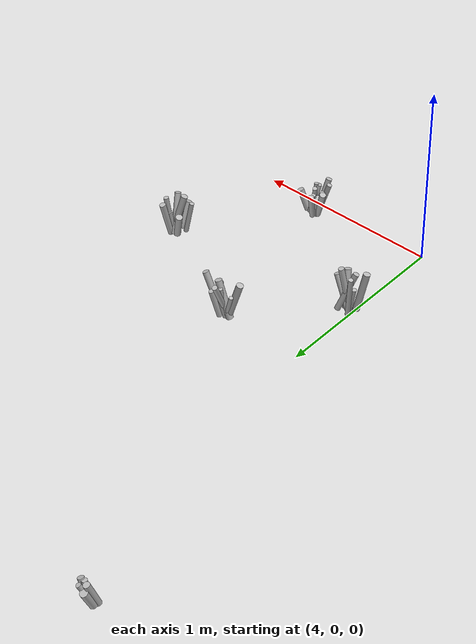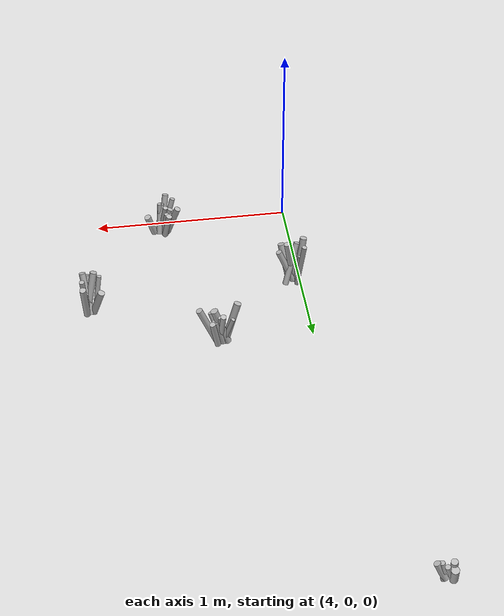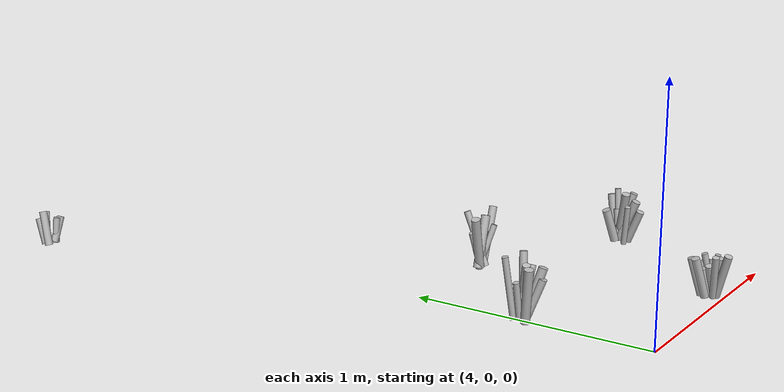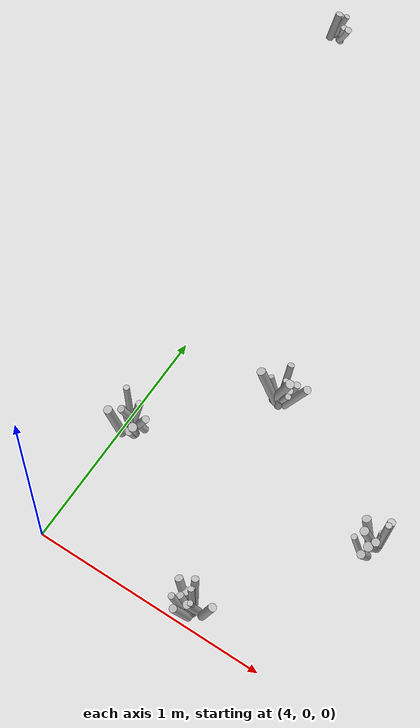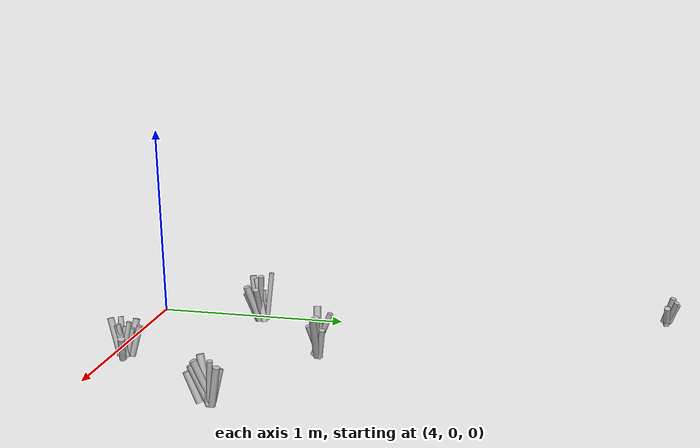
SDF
<sdf version="1.6">
 <world name="default">
  <model name="tussocks">
   <static>true</static>
   <link name="tuft61_0">
    <pose>4.4151 0.9806 0.1096 0 0.2921 3.3738</pose>
    <visual name="tuft61_0_v">
     <geometry><cylinder><radius>0.0185</radius><length>0.2382</length></cylinder></geometry>
     <material>
      <script>
       <uri>model://bushfire/materials/scripts</uri>
       <uri>model://bushfire/materials/textures</uri>
       <name>Bushfire/Foliage2</name>
      </script>
     </material>
    </visual>
   </link>
   <link name="tuft61_1">
    <pose>4.4665 1.0176 0.1105 0 0.3881 1.6053</pose>
    <visual name="tuft61_1_v">
     <geometry><cylinder><radius>0.0141</radius><length>0.2403</length></cylinder></geometry>
     <material>
      <script>
       <uri>model://bushfire/materials/scripts</uri>
       <uri>model://bushfire/materials/textures</uri>
       <name>Bushfire/Tussock</name>
      </script>
     </material>
    </visual>
   </link>
   <link name="tuft61_2">
    <pose>4.4705 1.0020 0.0847 0 0.1331 1.2340</pose>
    <visual name="tuft61_2_v">
     <geometry><cylinder><radius>0.0120</radius><length>0.1840</length></cylinder></geometry>
     <material>
      <script>
       <uri>model://bushfire/materials/scripts</uri>
       <uri>model://bushfire/materials/textures</uri>
       <name>Bushfire/Tussock</name>
      </script>
     </material>
    </visual>
   </link>
   <link name="tuft61_3">
    <pose>4.4894 0.9790 0.0834 0 0.3740 5.7212</pose>
    <visual name="tuft61_3_v">
     <geometry><cylinder><radius>0.0123</radius><length>0.1814</length></cylinder></geometry>
     <material>
      <script>
       <uri>model://bushfire/materials/scripts</uri>
       <uri>model://bushfire/materials/textures</uri>
       <name>Bushfire/Tussock</name>
      </script>
     </material>
    </visual>
   </link>
   <link name="tuft61_4">
    <pose>4.4333 1.0014 0.0744 0 0.3127 2.8972</pose>
    <visual name="tuft61_4_v">
     <geometry><cylinder><radius>0.0111</radius><length>0.1618</length></cylinder></geometry>
     <material>
      <script>
       <uri>model://bushfire/materials/scripts</uri>
       <uri>model://bushfire/materials/textures</uri>
       <name>Bushfire/Tussock</name>
      </script>
     </material>
    </visual>
   </link>
   <link name="tuft61_5">
    <pose>4.5317 0.9990 0.1124 0 0.3908 0.0947</pose>
    <visual name="tuft61_5_v">
     <geometry><cylinder><radius>0.0167</radius><length>0.2444</length></cylinder></geometry>
     <material>
      <script>
       <uri>model://bushfire/materials/scripts</uri>
       <uri>model://bushfire/materials/textures</uri>
       <name>Bushfire/Foliage2</name>
      </script>
     </material>
    </visual>
   </link>
   <link name="tuft61_6">
    <pose>4.4775 0.9956 0.0676 0 0.2795 0.2603</pose>
    <visual name="tuft61_6_v">
     <geometry><cylinder><radius>0.0194</radius><length>0.1470</length></cylinder></geometry>
     <material>
      <script>
       <uri>model://bushfire/materials/scripts</uri>
       <uri>model://bushfire/materials/textures</uri>
       <name>Bushfire/Tussock</name>
      </script>
     </material>
    </visual>
   </link>
   <link name="tuft61_7">
    <pose>4.4685 0.9930 0.1018 0 0.3137 0.0616</pose>
    <visual name="tuft61_7_v">
     <geometry><cylinder><radius>0.0186</radius><length>0.2214</length></cylinder></geometry>
     <material>
      <script>
       <uri>model://bushfire/materials/scripts</uri>
       <uri>model://bushfire/materials/textures</uri>
       <name>Bushfire/Tussock</name>
      </script>
     </material>
    </visual>
   </link>
   <link name="tuft61_8">
    <pose>4.5009 1.0201 0.0737 0 0.2405 0.6806</pose>
    <visual name="tuft61_8_v">
     <geometry><cylinder><radius>0.0152</radius><length>0.1602</length></cylinder></geometry>
     <material>
      <script>
       <uri>model://bushfire/materials/scripts</uri>
       <uri>model://bushfire/materials/textures</uri>
       <name>Bushfire/Tussock</name>
      </script>
     </material>
    </visual>
   </link>
   <link name="tuft96_0">
    <pose>4.0501 0.5662 0.1218 0 0.1888 0.5560</pose>
    <visual name="tuft96_0_v">
     <geometry><cylinder><radius>0.0153</radius><length>0.2648</length></cylinder></geometry>
     <material>
      <script>
       <uri>model://bushfire/materials/scripts</uri>
       <uri>model://bushfire/materials/textures</uri>
       <name>Bushfire/Foliage2</name>
      </script>
     </material>
    </visual>
   </link>
   <link name="tuft96_1">
    <pose>4.0106 0.5660 0.0719 0 0.1819 3.0913</pose>
    <visual name="tuft96_1_v">
     <geometry><cylinder><radius>0.0126</radius><length>0.1563</length></cylinder></geometry>
     <material>
      <script>
       <uri>model://bushfire/materials/scripts</uri>
       <uri>model://bushfire/materials/textures</uri>
       <name>Bushfire/Foliage2</name>
      </script>
     </material>
    </visual>
   </link>
   <link name="tuft96_2">
    <pose>4.0708 0.5291 0.0955 0 0.3170 5.3133</pose>
    <visual name="tuft96_2_v">
     <geometry><cylinder><radius>0.0182</radius><length>0.2076</length></cylinder></geometry>
     <material>
      <script>
       <uri>model://bushfire/materials/scripts</uri>
       <uri>model://bushfire/materials/textures</uri>
       <name>Bushfire/Foliage2</name>
      </script>
     </material>
    </visual>
   </link>
   <link name="tuft96_3">
    <pose>4.0013 0.5989 0.1187 0 0.1540 2.4898</pose>
    <visual name="tuft96_3_v">
     <geometry><cylinder><radius>0.0127</radius><length>0.2581</length></cylinder></geometry>
     <material>
      <script>
       <uri>model://bushfire/materials/scripts</uri>
       <uri>model://bushfire/materials/textures</uri>
       <name>Bushfire/Tussock</name>
      </script>
     </material>
    </visual>
   </link>
   <link name="tuft96_4">
    <pose>4.0453 0.5628 0.1089 0 0.3776 3.8705</pose>
    <visual name="tuft96_4_v">
     <geometry><cylinder><radius>0.0156</radius><length>0.2368</length></cylinder></geometry>
     <material>
      <script>
       <uri>model://bushfire/materials/scripts</uri>
       <uri>model://bushfire/materials/textures</uri>
       <name>Bushfire/Foliage2</name>
      </script>
     </material>
    </visual>
   </link>
   <link name="tuft96_5">
    <pose>4.0717 0.5628 0.0942 0 0.3844 6.2304</pose>
    <visual name="tuft96_5_v">
     <geometry><cylinder><radius>0.0155</radius><length>0.2048</length></cylinder></geometry>
     <material>
      <script>
       <uri>model://bushfire/materials/scripts</uri>
       <uri>model://bushfire/materials/textures</uri>
       <name>Bushfire/Foliage2</name>
      </script>
     </material>
    </visual>
   </link>
   <link name="tuft96_6">
    <pose>3.9899 0.5160 0.1066 0 0.1986 3.8435</pose>
    <visual name="tuft96_6_v">
     <geometry><cylinder><radius>0.0181</radius><length>0.2316</length></cylinder></geometry>
     <material>
      <script>
       <uri>model://bushfire/materials/scripts</uri>
       <uri>model://bushfire/materials/textures</uri>
       <name>Bushfire/Foliage2</name>
      </script>
     </material>
    </visual>
   </link>
   <link name="tuft96_7">
    <pose>4.0638 0.5216 0.0760 0 0.3597 5.0920</pose>
    <visual name="tuft96_7_v">
     <geometry><cylinder><radius>0.0161</radius><length>0.1652</length></cylinder></geometry>
     <material>
      <script>
       <uri>model://bushfire/materials/scripts</uri>
       <uri>model://bushfire/materials/textures</uri>
       <name>Bushfire/Tussock</name>
      </script>
     </material>
    </visual>
   </link>
   <link name="tuft105_1">
    <pose>3.6603 2.7120 0.0681 0 0.3102 1.1904</pose>
    <visual name="tuft105_1_v">
     <geometry><cylinder><radius>0.0167</radius><length>0.1479</length></cylinder></geometry>
     <material>
      <script>
       <uri>model://bushfire/materials/scripts</uri>
       <uri>model://bushfire/materials/textures</uri>
       <name>Bushfire/Foliage2</name>
      </script>
     </material>
    </visual>
   </link>
   <link name="tuft105_2">
    <pose>3.7167 2.7016 0.0521 0 0.3879 6.2484</pose>
    <visual name="tuft105_2_v">
     <geometry><cylinder><radius>0.0161</radius><length>0.1132</length></cylinder></geometry>
     <material>
      <script>
       <uri>model://bushfire/materials/scripts</uri>
       <uri>model://bushfire/materials/textures</uri>
       <name>Bushfire/Foliage2</name>
      </script>
     </material>
    </visual>
   </link>
   <link name="tuft105_3">
    <pose>3.7090 2.7017 0.0505 0 0.1284 6.2457</pose>
    <visual name="tuft105_3_v">
     <geometry><cylinder><radius>0.0145</radius><length>0.1098</length></cylinder></geometry>
     <material>
      <script>
       <uri>model://bushfire/materials/scripts</uri>
       <uri>model://bushfire/materials/textures</uri>
       <name>Bushfire/Tussock</name>
      </script>
     </material>
    </visual>
   </link>
   <link name="tuft105_6">
    <pose>3.6818 2.7289 0.0636 0 0.4115 0.7934</pose>
    <visual name="tuft105_6_v">
     <geometry><cylinder><radius>0.0129</radius><length>0.1382</length></cylinder></geometry>
     <material>
      <script>
       <uri>model://bushfire/materials/scripts</uri>
       <uri>model://bushfire/materials/textures</uri>
       <name>Bushfire/Tussock</name>
      </script>
     </material>
    </visual>
   </link>
   <link name="tuft105_8">
    <pose>3.6631 2.7329 0.0522 0 0.3664 1.3627</pose>
    <visual name="tuft105_8_v">
     <geometry><cylinder><radius>0.0196</radius><length>0.1135</length></cylinder></geometry>
     <material>
      <script>
       <uri>model://bushfire/materials/scripts</uri>
       <uri>model://bushfire/materials/textures</uri>
       <name>Bushfire/Tussock</name>
      </script>
     </material>
    </visual>
   </link>
   <link name="tuft141_0">
    <pose>4.6321 0.0795 0.0562 0 0.1869 2.5877</pose>
    <visual name="tuft141_0_v">
     <geometry><cylinder><radius>0.0187</radius><length>0.1221</length></cylinder></geometry>
     <material>
      <script>
       <uri>model://bushfire/materials/scripts</uri>
       <uri>model://bushfire/materials/textures</uri>
       <name>Bushfire/Foliage2</name>
      </script>
     </material>
    </visual>
   </link>
   <link name="tuft141_1">
    <pose>4.6475 0.0113 0.0888 0 0.3189 4.2196</pose>
    <visual name="tuft141_1_v">
     <geometry><cylinder><radius>0.0161</radius><length>0.1931</length></cylinder></geometry>
     <material>
      <script>
       <uri>model://bushfire/materials/scripts</uri>
       <uri>model://bushfire/materials/textures</uri>
       <name>Bushfire/Foliage2</name>
      </script>
     </material>
    </visual>
   </link>
   <link name="tuft141_2">
    <pose>4.6086 0.0854 0.0820 0 0.3433 2.6937</pose>
    <visual name="tuft141_2_v">
     <geometry><cylinder><radius>0.0166</radius><length>0.1782</length></cylinder></geometry>
     <material>
      <script>
       <uri>model://bushfire/materials/scripts</uri>
       <uri>model://bushfire/materials/textures</uri>
       <name>Bushfire/Foliage2</name>
      </script>
     </material>
    </visual>
   </link>
   <link name="tuft141_3">
    <pose>4.6713 0.0531 0.0798 0 0.1381 4.7521</pose>
    <visual name="tuft141_3_v">
     <geometry><cylinder><radius>0.0118</radius><length>0.1735</length></cylinder></geometry>
     <material>
      <script>
       <uri>model://bushfire/materials/scripts</uri>
       <uri>model://bushfire/materials/textures</uri>
       <name>Bushfire/Foliage2</name>
      </script>
     </material>
    </visual>
   </link>
   <link name="tuft141_5">
    <pose>4.6403 0.1154 0.0728 0 0.2866 2.0464</pose>
    <visual name="tuft141_5_v">
     <geometry><cylinder><radius>0.0153</radius><length>0.1582</length></cylinder></geometry>
     <material>
      <script>
       <uri>model://bushfire/materials/scripts</uri>
       <uri>model://bushfire/materials/textures</uri>
       <name>Bushfire/Tussock</name>
      </script>
     </material>
    </visual>
   </link>
   <link name="tuft141_6">
    <pose>4.6710 0.0548 0.0770 0 0.2916 4.3720</pose>
    <visual name="tuft141_6_v">
     <geometry><cylinder><radius>0.0168</radius><length>0.1674</length></cylinder></geometry>
     <material>
      <script>
       <uri>model://bushfire/materials/scripts</uri>
       <uri>model://bushfire/materials/textures</uri>
       <name>Bushfire/Foliage2</name>
      </script>
     </material>
    </visual>
   </link>
   <link name="tuft141_7">
    <pose>4.7217 0.0781 0.0583 0 0.3330 0.4227</pose>
    <visual name="tuft141_7_v">
     <geometry><cylinder><radius>0.0171</radius><length>0.1267</length></cylinder></geometry>
     <material>
      <script>
       <uri>model://bushfire/materials/scripts</uri>
       <uri>model://bushfire/materials/textures</uri>
       <name>Bushfire/Tussock</name>
      </script>
     </material>
    </visual>
   </link>
   <link name="tuft141_8">
    <pose>4.6408 0.0547 0.0663 0 0.3454 3.1650</pose>
    <visual name="tuft141_8_v">
     <geometry><cylinder><radius>0.0154</radius><length>0.1440</length></cylinder></geometry>
     <material>
      <script>
       <uri>model://bushfire/materials/scripts</uri>
       <uri>model://bushfire/materials/textures</uri>
       <name>Bushfire/Tussock</name>
      </script>
     </material>
    </visual>
   </link>
   <link name="tuft141_9">
    <pose>4.6491 0.0881 0.0670 0 0.2144 2.1635</pose>
    <visual name="tuft141_9_v">
     <geometry><cylinder><radius>0.0116</radius><length>0.1457</length></cylinder></geometry>
     <material>
      <script>
       <uri>model://bushfire/materials/scripts</uri>
       <uri>model://bushfire/materials/textures</uri>
       <name>Bushfire/Foliage2</name>
      </script>
     </material>
    </visual>
   </link>
   <link name="tuft141_10">
    <pose>4.6574 0.0717 0.0830 0 0.2245 2.2740</pose>
    <visual name="tuft141_10_v">
     <geometry><cylinder><radius>0.0126</radius><length>0.1804</length></cylinder></geometry>
     <material>
      <script>
       <uri>model://bushfire/materials/scripts</uri>
       <uri>model://bushfire/materials/textures</uri>
       <name>Bushfire/Tussock</name>
      </script>
     </material>
    </visual>
   </link>
   <link name="tuft141_11">
    <pose>4.6244 0.0339 0.0873 0 0.2897 3.5713</pose>
    <visual name="tuft141_11_v">
     <geometry><cylinder><radius>0.0136</radius><length>0.1899</length></cylinder></geometry>
     <material>
      <script>
       <uri>model://bushfire/materials/scripts</uri>
       <uri>model://bushfire/materials/textures</uri>
       <name>Bushfire/Tussock</name>
      </script>
     </material>
    </visual>
   </link>
   <link name="tuft150_0">
    <pose>5.1115 0.6482 0.1036 0 0.3543 5.1366</pose>
    <visual name="tuft150_0_v">
     <geometry><cylinder><radius>0.0165</radius><length>0.2252</length></cylinder></geometry>
     <material>
      <script>
       <uri>model://bushfire/materials/scripts</uri>
       <uri>model://bushfire/materials/textures</uri>
       <name>Bushfire/Tussock</name>
      </script>
     </material>
    </visual>
   </link>
   <link name="tuft150_1">
    <pose>5.0929 0.6493 0.1069 0 0.2933 3.9733</pose>
    <visual name="tuft150_1_v">
     <geometry><cylinder><radius>0.0180</radius><length>0.2323</length></cylinder></geometry>
     <material>
      <script>
       <uri>model://bushfire/materials/scripts</uri>
       <uri>model://bushfire/materials/textures</uri>
       <name>Bushfire/Tussock</name>
      </script>
     </material>
    </visual>
   </link>
   <link name="tuft150_2">
    <pose>5.1246 0.6831 0.1046 0 0.1350 0.8071</pose>
    <visual name="tuft150_2_v">
     <geometry><cylinder><radius>0.0132</radius><length>0.2273</length></cylinder></geometry>
     <material>
      <script>
       <uri>model://bushfire/materials/scripts</uri>
       <uri>model://bushfire/materials/textures</uri>
       <name>Bushfire/Foliage2</name>
      </script>
     </material>
    </visual>
   </link>
   <link name="tuft150_3">
    <pose>5.1051 0.6319 0.0892 0 0.3663 4.7180</pose>
    <visual name="tuft150_3_v">
     <geometry><cylinder><radius>0.0122</radius><length>0.1940</length></cylinder></geometry>
     <material>
      <script>
       <uri>model://bushfire/materials/scripts</uri>
       <uri>model://bushfire/materials/textures</uri>
       <name>Bushfire/Tussock</name>
      </script>
     </material>
    </visual>
   </link>
   <link name="tuft150_4">
    <pose>5.0549 0.6133 0.0825 0 0.1929 3.9191</pose>
    <visual name="tuft150_4_v">
     <geometry><cylinder><radius>0.0124</radius><length>0.1794</length></cylinder></geometry>
     <material>
      <script>
       <uri>model://bushfire/materials/scripts</uri>
       <uri>model://bushfire/materials/textures</uri>
       <name>Bushfire/Foliage2</name>
      </script>
     </material>
    </visual>
   </link>
   <link name="tuft150_5">
    <pose>5.0614 0.6883 0.0700 0 0.3294 2.6080</pose>
    <visual name="tuft150_5_v">
     <geometry><cylinder><radius>0.0182</radius><length>0.1521</length></cylinder></geometry>
     <material>
      <script>
       <uri>model://bushfire/materials/scripts</uri>
       <uri>model://bushfire/materials/textures</uri>
       <name>Bushfire/Tussock</name>
      </script>
     </material>
    </visual>
   </link>
   <link name="tuft150_6">
    <pose>5.1250 0.7043 0.0914 0 0.2101 1.1226</pose>
    <visual name="tuft150_6_v">
     <geometry><cylinder><radius>0.0167</radius><length>0.1987</length></cylinder></geometry>
     <material>
      <script>
       <uri>model://bushfire/materials/scripts</uri>
       <uri>model://bushfire/materials/textures</uri>
       <name>Bushfire/Foliage2</name>
      </script>
     </material>
    </visual>
   </link>
   <link name="tuft150_7">
    <pose>5.1169 0.6805 0.0619 0 0.1290 0.9825</pose>
    <visual name="tuft150_7_v">
     <geometry><cylinder><radius>0.0150</radius><length>0.1346</length></cylinder></geometry>
     <material>
      <script>
       <uri>model://bushfire/materials/scripts</uri>
       <uri>model://bushfire/materials/textures</uri>
       <name>Bushfire/Tussock</name>
      </script>
     </material>
    </visual>
   </link>
   <link name="tuft150_8">
    <pose>5.1070 0.6314 0.0897 0 0.4059 4.7781</pose>
    <visual name="tuft150_8_v">
     <geometry><cylinder><radius>0.0191</radius><length>0.1950</length></cylinder></geometry>
     <material>
      <script>
       <uri>model://bushfire/materials/scripts</uri>
       <uri>model://bushfire/materials/textures</uri>
       <name>Bushfire/Foliage2</name>
      </script>
     </material>
    </visual>
   </link>
   <link name="tuft150_9">
    <pose>5.0995 0.5948 0.0698 0 0.3858 4.6316</pose>
    <visual name="tuft150_9_v">
     <geometry><cylinder><radius>0.0170</radius><length>0.1518</length></cylinder></geometry>
     <material>
      <script>
       <uri>model://bushfire/materials/scripts</uri>
       <uri>model://bushfire/materials/textures</uri>
       <name>Bushfire/Tussock</name>
      </script>
     </material>
    </visual>
   </link>
  </model>
 </world>
</sdf>
